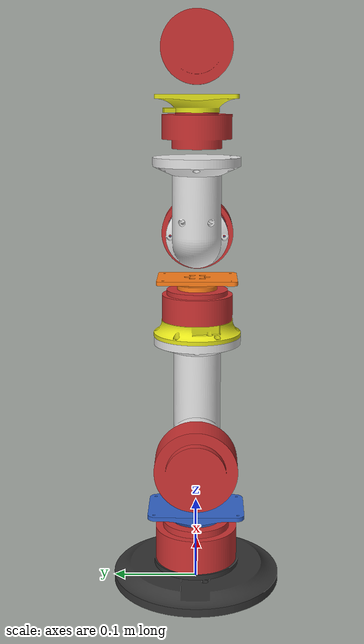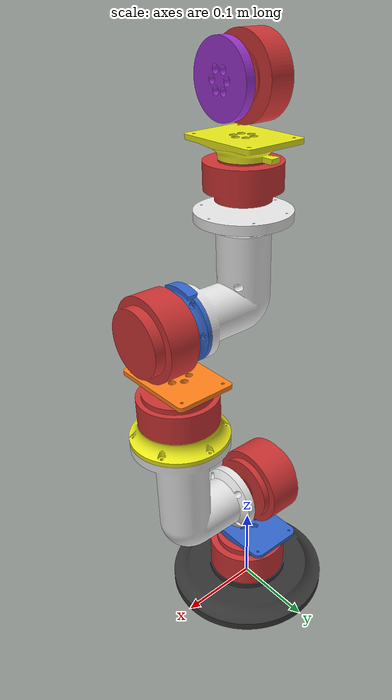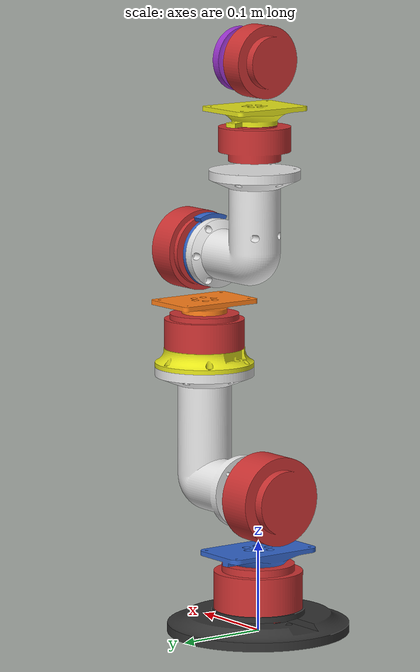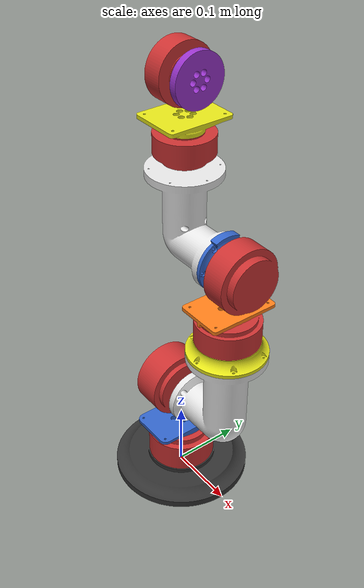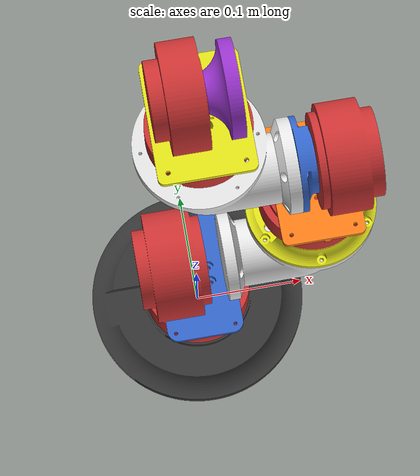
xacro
<?xml version='1.0' encoding='utf-8'?>
<robot xmlns:xacro="http://www.ros.org/wiki/xacro" name="my_robot">

  <!-- Materials -->
  <material name="robot_black">
    <color rgba="0.2 0.2 0.2 1"/>
  </material>
  <material name="robot_white">
    <color rgba="0.9 0.9 0.9 1"/>
  </material>
  <material name="robot_red">
    <color rgba="0.8 0.2 0.2 1"/>
  </material>
  <material name="robot_blue">
    <color rgba="0.2 0.4 0.8 1"/>
  </material>
  <material name="robot_green">
    <color rgba="0.2 0.8 0.2 1"/>
  </material>
  <material name="robot_yellow">
    <color rgba="0.9 0.9 0.1 1"/>
    </material>
  <material name="robot_orange">
    <color rgba="1.0 0.5 0.1 1"/>
  </material>
  <material name="robot_purple">
    <color rgba="0.6 0.2 0.8 1"/>
  </material>

  <!-- Xacro properties for common values -->
  <xacro:property name="mesh_scale" value="0.001 0.001 0.001"/>

  <!-- Macro for mesh link -->
  <xacro:macro name="mesh_link" params="name mesh_file material_name collision_xyz:='0 0 0' visual_xyz:='0 0 0' collision_geometry:=''">
    <link name="${name}">
      <collision name="mesh_${name}_collision">
        <origin rpy="0.0 0.0 0.0" xyz="${collision_xyz}"/>
        <geometry>
          <xacro:if value="${collision_geometry == ''}">
            <mesh filename="package://my_robot_ros2_control/description/urdf/meshes/${mesh_file}" scale="${mesh_scale}"/>
          </xacro:if>
          <xacro:if value="${collision_geometry == 'box'}">
            <box size="0.07 0.115 0.015"/>
          </xacro:if>
          <!-- Add other geometry types as needed -->
        </geometry>
      </collision>
      <visual name="mesh_${name}">
        <material name="${material_name}"/>
        <origin rpy="0.0 0.0 0.0" xyz="${visual_xyz}"/>
        <geometry>
          <mesh filename="package://my_robot_ros2_control/description/urdf/meshes/${mesh_file}" scale="${mesh_scale}"/>
        </geometry>
      </visual>
    </link>
  </xacro:macro>

  <!-- Macro for revolute joint -->
  <xacro:macro name="revolute_joint" params="name parent child xyz rpy axis lower upper velocity effort">
    <joint name="${name}" type="revolute">
      <limit lower="${lower}" upper="${upper}" effort="${effort}" velocity="${velocity}"/>
      <origin rpy="${rpy}" xyz="${xyz}"/>
      <parent link="${parent}"/>
      <child link="${child}"/>
      <axis xyz="${axis}"/>
    </joint>
  </xacro:macro>

  <!-- Macro for fixed joint -->
  <xacro:macro name="fixed_joint" params="name parent child xyz rpy">
    <joint name="${name}" type="fixed">
      <origin rpy="${rpy}" xyz="${xyz}"/>
      <parent link="${parent}"/>
      <child link="${child}"/>
    </joint>
  </xacro:macro>

  <!-- World Link -->
  <link name="world"/>

  <!-- Base Joint (connects world to robot) -->
  <joint name="base_joint" type="fixed">
    <origin xyz="0 0 0" rpy="0 0 0"/>
    <parent link="world"/>
    <child link="base_link"/>
  </joint>

  <!-- Base Link -->
  <xacro:mesh_link name="base_link"
                   mesh_file="mesh_base_link.stl"
                   material_name="robot_black"
                   collision_xyz="0 0 0"
                   visual_xyz="0 0 0"/>

  <!-- Link 1 Motor -->
  <xacro:fixed_joint name="link1_motor_joint"
                     parent="base_link"
                     child="link1_motor"
                     xyz="0 0 0.0263"
                     rpy="0 0 0"/>

  <xacro:mesh_link name="link1_motor"
                   mesh_file="mesh_link1_motor.stl"
                   material_name="robot_red"
                   collision_xyz="0 0 -0.0263"
                   visual_xyz="0 0 -0.0263"/>

  <!-- Link 1_1 -->
  <xacro:revolute_joint name="link1_1_joint"
                        parent="link1_motor"
                        child="link1_1"
                        xyz="0 0 0.0507"
                        rpy="0 0 0"
                        axis="0 0 1"
                        lower="${-7.0 * pi / 6.0}"
                        upper="${pi / 6.0}"
                        velocity="${23.0 * 2.0 * pi / 60.0}"
                        effort="0.0"/>

  <xacro:mesh_link name="link1_1"
                   mesh_file="mesh_link1_1.stl"
                   material_name="robot_blue"
                   collision_xyz="0 0 -0.077"
                   visual_xyz="0 0 -0.077">
  </xacro:mesh_link>

  <!-- Link 1_2 -->
  <xacro:fixed_joint name="link1_2_joint"
                     parent="link1_1"
                     child="link1_2"
                     xyz="0 0 0.015"
                     rpy="0 0 0"/>

  <xacro:mesh_link name="link1_2"
                   mesh_file="mesh_link1_2.stl"
                   material_name="robot_white"
                   collision_xyz="0 0 -0.092"
                   visual_xyz="0 0 -0.092"/>

  <!-- Link 2 Motor -->
  <xacro:fixed_joint name="link2_motor_joint"
                     parent="link1_2"
                     child="link2_motor"
                     xyz="0 0 0.059"
                     rpy="0 0 0"/>

  <xacro:mesh_link name="link2_motor"
                   mesh_file="mesh_link2_motor.stl"
                   material_name="robot_red"
                   collision_xyz="0 0 -0.151"
                   visual_xyz="0 0 -0.151"/>

  <!-- Link 2_1 -->
  <xacro:revolute_joint name="link2_1_joint"
                        parent="link2_motor"
                        child="link2_1"
                        xyz="0.009 0 0"
                        rpy="0 0 0"
                        axis="1 0 0"
                        lower="${-pi / 2.0}"
                        upper="${pi / 2.0}"
                        velocity="${23.0 * 2.0 * pi / 60.0}"
                        effort="0.0"/>

  <xacro:mesh_link name="link2_1"
                   mesh_file="mesh_link2_1.stl"
                   material_name="robot_green"
                   collision_xyz="-0.009 0 -0.151"
                   visual_xyz="-0.009 0 -0.151"/>

  <!-- Link 2_2 -->
  <xacro:fixed_joint name="link2_2_joint"
                     parent="link2_1"
                     child="link2_2"
                     xyz="0.015 0 0"
                     rpy="0 0 0"/>

  <xacro:mesh_link name="link2_2"
                   mesh_file="mesh_link2_PLA.stl"
                   material_name="robot_white"
                   collision_xyz="-0.024 0 -0.151"
                   visual_xyz="-0.024 0 -0.151"/>

  <!-- Link 2_3 -->
  <xacro:fixed_joint name="link2_3_joint"
                     parent="link2_2"
                     child="link2_3"
                     xyz="0.075 0 0.13"
                     rpy="0 0 0"/>

  <xacro:mesh_link name="link2_3"
                   mesh_file="mesh_link2_7.stl"
                   material_name="robot_yellow"
                   collision_xyz="-0.099 0 -0.281"
                   visual_xyz="-0.099 0 -0.281"/>

  <!-- Link 3 Motor -->
  <xacro:fixed_joint name="link3_motor_joint"
                     parent="link2_3"
                     child="link3_motor"
                     xyz="0 0 0.021"
                     rpy="0 0 0"/>

  <xacro:mesh_link name="link3_motor"
                   mesh_file="mesh_link3_motor.stl"
                   material_name="robot_red"
                   collision_xyz="-0.099 0 -0.302"
                   visual_xyz="-0.099 0 -0.302"/>

  <!-- Link 3_1 -->
  <xacro:revolute_joint name="link3_1_joint"
                        parent="link3_motor"
                        child="link3_1"
                        xyz="0 0 0.03905"
                        rpy="0 0 0"
                        axis="0 0 1"
                        lower="${-23.0 * pi / 18.0}"
                        upper="${pi / 3.0}"
                        velocity="${148.0 * 2.0 * pi / 60.0}"
                        effort="0.0"/>

  <xacro:mesh_link name="link3_1"
                   mesh_file="mesh_link3_1.stl"
                   material_name="robot_orange"
                   collision_xyz="-0.099 0 -0.34105"
                   visual_xyz="-0.099 0 -0.34105"/>

  <!-- Link 3_2 -->
  <xacro:fixed_joint name="link3_2_joint"
                     parent="link3_1"
                     child="link3_2"
                     xyz="0 0 0.015"
                     rpy="0 0 0"/>

  <xacro:mesh_link name="link3_2"
                   mesh_file="mesh_link3_2.stl"
                   material_name="robot_purple"
                   collision_xyz="-0.099 0 -0.35605"
                   visual_xyz="-0.099 0 -0.35605"/>

  <!-- Link 4 Motor -->
  <xacro:fixed_joint name="link4_motor_joint"
                     parent="link3_2"
                     child="link4_motor"
                     xyz="0.004 0 0.0546"
                     rpy="0 0 0"/>

  <xacro:mesh_link name="link4_motor"
                   mesh_file="mesh_link4_motor.stl"
                   material_name="robot_red"
                   collision_xyz="-0.103 0 -0.41065"
                   visual_xyz="-0.103 0 -0.41065"/>

  <!-- Link 4_1 -->
  <xacro:revolute_joint name="link4_1_joint"
                        parent="link4_motor"
                        child="link4_1"
                        xyz="-0.0065 0 0"
                        rpy="0 0 0"
                        axis="-1 0 0"
                        lower="${-19.0 * pi / 36.0}"
                        upper="${19.0 * pi / 36.0}"
                        velocity="${148.0 * 2.0 * pi / 60.0}"
                        effort="0.0"/>

  <xacro:mesh_link name="link4_1"
                   mesh_file="mesh_link4_1.stl"
                   material_name="robot_blue"
                   collision_xyz="-0.0965 0 -0.41065"
                   visual_xyz="-0.0965 0 -0.41065"/>

  <!-- Link 4_2 -->
  <xacro:fixed_joint name="link4_2_joint"
                     parent="link4_1"
                     child="link4_2"
                     xyz="-0.015 0 0"
                     rpy="0 0 0"/>

  <xacro:mesh_link name="link4_2"
                   mesh_file="mesh_link4_PLA.stl"
                   material_name="robot_white"
                   collision_xyz="-0.0815 0 -0.41065"
                   visual_xyz="-0.0815 0 -0.41065"/>

  <!-- Link 4_3 -->
  <xacro:fixed_joint name="link4_3_joint"
                     parent="link4_2"
                     child="link4_3"
                     xyz="-0.075 0 0.1"
                     rpy="0 0 0"/>

  <xacro:mesh_link name="link4_3"
                   mesh_file="mesh_link4_7.stl"
                   material_name="robot_green"
                   collision_xyz="-0.0065 0 -0.51065"
                   visual_xyz="-0.0065 0 -0.51065"/>

  <!-- Link 5 Motor -->
  <xacro:fixed_joint name="link5_motor_joint"
                     parent="link4_3"
                     child="link5_motor"
                     xyz="0 0 0.02"
                     rpy="0 0 0"/>

  <xacro:mesh_link name="link5_motor"
                   mesh_file="mesh_link5_motor.stl"
                   material_name="robot_red"
                   collision_xyz="-0.0065 0 -0.53065"
                   visual_xyz="-0.0065 0 -0.53065"/>

  <!-- Link 5_1 -->
  <xacro:revolute_joint name="link5_1_joint"
                        parent="link5_motor"
                        child="link5_1"
                        xyz="0 0 0.029"
                        rpy="0 0 0"
                        axis="0 0 1"
                        lower="${-10.0 * pi / 9.0}"
                        upper="${2.0 * pi / 3.0}"
                        velocity="${233.0 * 2.0 * pi / 60.0}"
                        effort="0.0"/>

  <xacro:mesh_link name="link5_1"
                   mesh_file="mesh_link5_1.stl"
                   material_name="robot_yellow"
                   collision_xyz="-0.0065 0 -0.55965"
                   visual_xyz="-0.0065 0 -0.55965"/>

  <!-- Link 5_2 -->
  <xacro:fixed_joint name="link5_2_joint"
                     parent="link5_1"
                     child="link5_2"
                     xyz="0 0 0.02"
                     rpy="0 0 0"/>

  <xacro:mesh_link name="link5_2"
                   mesh_file="mesh_link5_2.stl"
                   material_name="robot_orange"
                   collision_xyz="-0.0065 0 -0.57965"
                   visual_xyz="-0.0065 0 -0.57965"/>

  <!-- Link 6 Motor -->
  <xacro:fixed_joint name="link6_motor_joint"
                     parent="link5_2"
                     child="link6_motor"
                     xyz="0.0035 0 0.04950"
                     rpy="0 0 0"/>

  <xacro:mesh_link name="link6_motor"
                   mesh_file="mesh_link6_motor.stl"
                   material_name="robot_red"
                   collision_xyz="-0.01 0 -0.62915"
                   visual_xyz="-0.01 0 -0.62915"/>

  <!-- Link 6_1 (End Effector) -->
  <xacro:revolute_joint name="link6_1_joint"
                        parent="link6_motor"
                        child="link6_1"
                        xyz="0.002 0 0"
                        rpy="0 0 0"
                        axis="1 0 0"
                        lower="${-19.0 * pi / 36.0}"
                        upper="${19.0 * pi / 36.0}"
                        velocity="${233.0 * 2.0 * pi / 60.0}"
                        effort="0.0"/>

  <xacro:mesh_link name="link6_1"
                   mesh_file="mesh_link6_1.stl"
                   material_name="robot_purple"
                   collision_xyz="-0.012 0 -0.62915"
                   visual_xyz="-0.012 0 -0.62915"/>

</robot>
